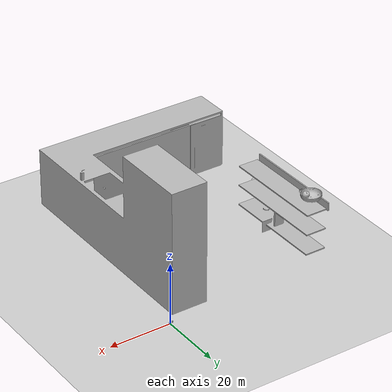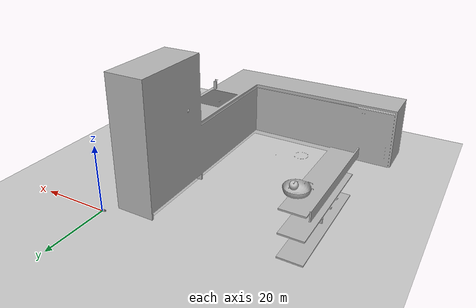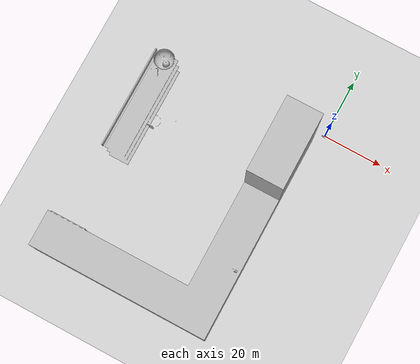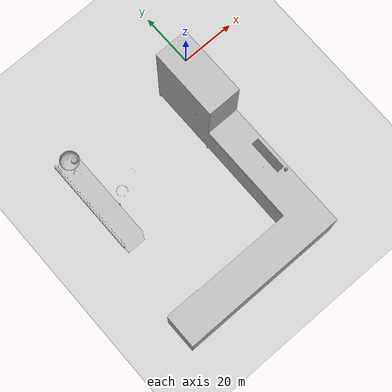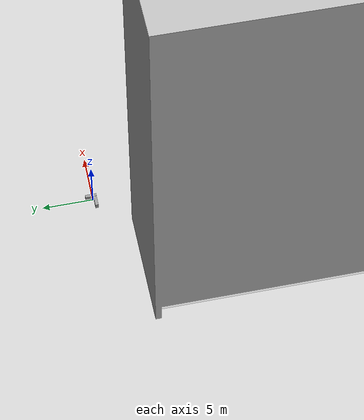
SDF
<sdf version="1.7">
 <world name="default">
  <light name="sun" type="directional">
   <pose>0 0 10 0 -0 0</pose>
   <diffuse>0.8 0.8 0.8 1</diffuse>
   <specular>0.2 0.2 0.2 1</specular>
   <attenuation>
    <range>1000</range>
    <constant>0.9</constant>
    <linear>0.01</linear>
    <quadratic>0.001</quadratic>
   </attenuation>
   <direction>-0.5 0.1 -0.9</direction>
   <spot><inner_angle>0</inner_angle><outer_angle>0</outer_angle><falloff>0</falloff></spot>
  </light>
  <model name="ground_plane">
   <static>1</static>
   <link name="link">
    <collision name="collision">
     <geometry><plane><normal>0 0 1</normal><size>100 100</size></plane></geometry>
     <surface>
      <contact><collide_bitmask>65535</collide_bitmask></contact>
      <friction><ode><mu>100</mu><mu2>50</mu2></ode></friction>
     </surface>
    </collision>
    <visual name="visual">
     <cast_shadows>0</cast_shadows>
     <geometry><plane><normal>0 0 1</normal><size>100 100</size></plane></geometry>
     <material>
      <script><uri>file://media/materials/scripts/gazebo.material</uri><name>Gazebo/Grey</name></script>
     </material>
    </visual>
   </link>
  </model>
  <gravity>0 0 -9.8</gravity>
  <magnetic_field>6e-06 2.3e-05 -4.2e-05</magnetic_field>
  <atmosphere type="adiabatic"/>
  <physics type="ode">
   <max_step_size>0.001</max_step_size>
   <real_time_factor>1</real_time_factor>
   <real_time_update_rate>1000</real_time_update_rate>
  </physics>
  <scene><ambient>0.4 0.4 0.4 1</ambient><background>0.7 0.7 0.7 1</background><shadows>1</shadows></scene>
  <spherical_coordinates>
   <surface_model>EARTH_WGS84</surface_model>
   <latitude_deg>0</latitude_deg>
   <longitude_deg>0</longitude_deg>
   <elevation>0</elevation>
   <heading_deg>0</heading_deg>
  </spherical_coordinates>
  <model name="kitchen">
   <static>1</static>
   <link name="kitchen">
    <visual name="visual">
     <geometry><mesh><uri>model://Kitchen/meshes/model.dae</uri><scale>0.5 0.5 0.5</scale></mesh></geometry>
    </visual>
   </link>
   <pose>0.467305 1.57082 0 0 0 -3.13984</pose>
  </model>
  <model name="kitchen_with_coll">
   <link name="link_0">
    <inertial>
     <mass>91.57</mass>
     <inertia><ixx>10.9134</ixx><ixy>0</ixy><ixz>0</ixz><iyy>2.44873</iyy><iyz>0</iyz><izz>9.81194</izz></inertia>
    </inertial>
    <pose>0.235405 0.162265 0.248636 0 -0 0.006368</pose>
    <visual name="visual">
     <geometry><box><size>0.297114 1.09433 0.482309</size></box></geometry>
     <material>
      <lighting>0</lighting>
      <script><uri>file://media/materials/scripts/gazebo.material</uri><name>Gazebo/Grey</name></script>
      <shader type="pixel"><normal_map>__default__</normal_map></shader>
      <ambient>0.3 0.3 0.3 1</ambient>
      <diffuse>0.7 0.7 0.7 1</diffuse>
      <specular>0.01 0.01 0.01 1</specular>
      <emissive>0 0 0 1</emissive>
     </material>
    </visual>
    <collision name="collision">
     <geometry><box><size>0.297114 1.09433 0.482309</size></box></geometry>
     <surface>
      <friction>
       <ode><mu>1</mu><mu2>1</mu2><fdir1>0 0 0</fdir1><slip1>0</slip1><slip2>0</slip2></ode>
       <torsional>
        <coefficient>1</coefficient>
        <patch_radius>0</patch_radius>
        <surface_radius>0</surface_radius>
        <use_patch_radius>1</use_patch_radius>
        <ode><slip>0</slip></ode>
       </torsional>
      </friction>
      <bounce><restitution_coefficient>0</restitution_coefficient><threshold>1e+06</threshold></bounce>
      <contact>
       <collide_without_contact>0</collide_without_contact>
       <collide_without_contact_bitmask>1</collide_without_contact_bitmask>
       <collide_bitmask>1</collide_bitmask>
       <ode>
        <soft_cfm>0</soft_cfm>
        <soft_erp>0.2</soft_erp>
        <kp>1e+13</kp>
        <kd>1</kd>
        <max_vel>0.01</max_vel>
        <min_depth>0</min_depth>
       </ode>
       <bullet>
        <split_impulse>1</split_impulse>
        <split_impulse_penetration_threshold>-0.01</split_impulse_penetration_threshold>
        <soft_cfm>0</soft_cfm>
        <soft_erp>0.2</soft_erp>
        <kp>1e+13</kp>
        <kd>1</kd>
       </bullet>
      </contact>
     </surface>
    </collision>
   </link>
   <link name="link_0_clone">
    <inertial>
     <mass>91.57</mass>
     <inertia><ixx>10.9134</ixx><ixy>0</ixy><ixz>0</ixz><iyy>2.44873</iyy><iyz>0</iyz><izz>9.81194</izz></inertia>
    </inertial>
    <pose>-0.463644 -0.234468 0.248636 0 -0 1.57049</pose>
    <visual name="visual">
     <geometry><box><size>0.297114 1.09433 0.482309</size></box></geometry>
     <material>
      <lighting>0</lighting>
      <script><uri>file://media/materials/scripts/gazebo.material</uri><name>Gazebo/Grey</name></script>
      <shader type="pixel"><normal_map>__default__</normal_map></shader>
      <ambient>0.3 0.3 0.3 1</ambient>
      <diffuse>0.7 0.7 0.7 1</diffuse>
      <specular>0.01 0.01 0.01 1</specular>
      <emissive>0 0 0 1</emissive>
     </material>
    </visual>
    <collision name="collision">
     <geometry><box><size>0.297114 1.09433 0.482309</size></box></geometry>
     <surface>
      <friction>
       <ode><mu>1</mu><mu2>1</mu2><fdir1>0 0 0</fdir1><slip1>0</slip1><slip2>0</slip2></ode>
       <torsional>
        <coefficient>1</coefficient>
        <patch_radius>0</patch_radius>
        <surface_radius>0</surface_radius>
        <use_patch_radius>1</use_patch_radius>
        <ode><slip>0</slip></ode>
       </torsional>
      </friction>
      <bounce><restitution_coefficient>0</restitution_coefficient><threshold>1e+06</threshold></bounce>
      <contact>
       <collide_without_contact>0</collide_without_contact>
       <collide_without_contact_bitmask>1</collide_without_contact_bitmask>
       <collide_bitmask>1</collide_bitmask>
       <ode>
        <soft_cfm>0</soft_cfm>
        <soft_erp>0.2</soft_erp>
        <kp>1e+13</kp>
        <kd>1</kd>
        <max_vel>0.01</max_vel>
        <min_depth>0</min_depth>
       </ode>
       <bullet>
        <split_impulse>1</split_impulse>
        <split_impulse_penetration_threshold>-0.01</split_impulse_penetration_threshold>
        <soft_cfm>0</soft_cfm>
        <soft_erp>0.2</soft_erp>
        <kp>1e+13</kp>
        <kd>1</kd>
       </bullet>
      </contact>
     </surface>
    </collision>
   </link>
   <static>0</static>
   <pose>0 -1e-06 0 0 -0 0</pose>
  </model>
 </world>
</sdf>
